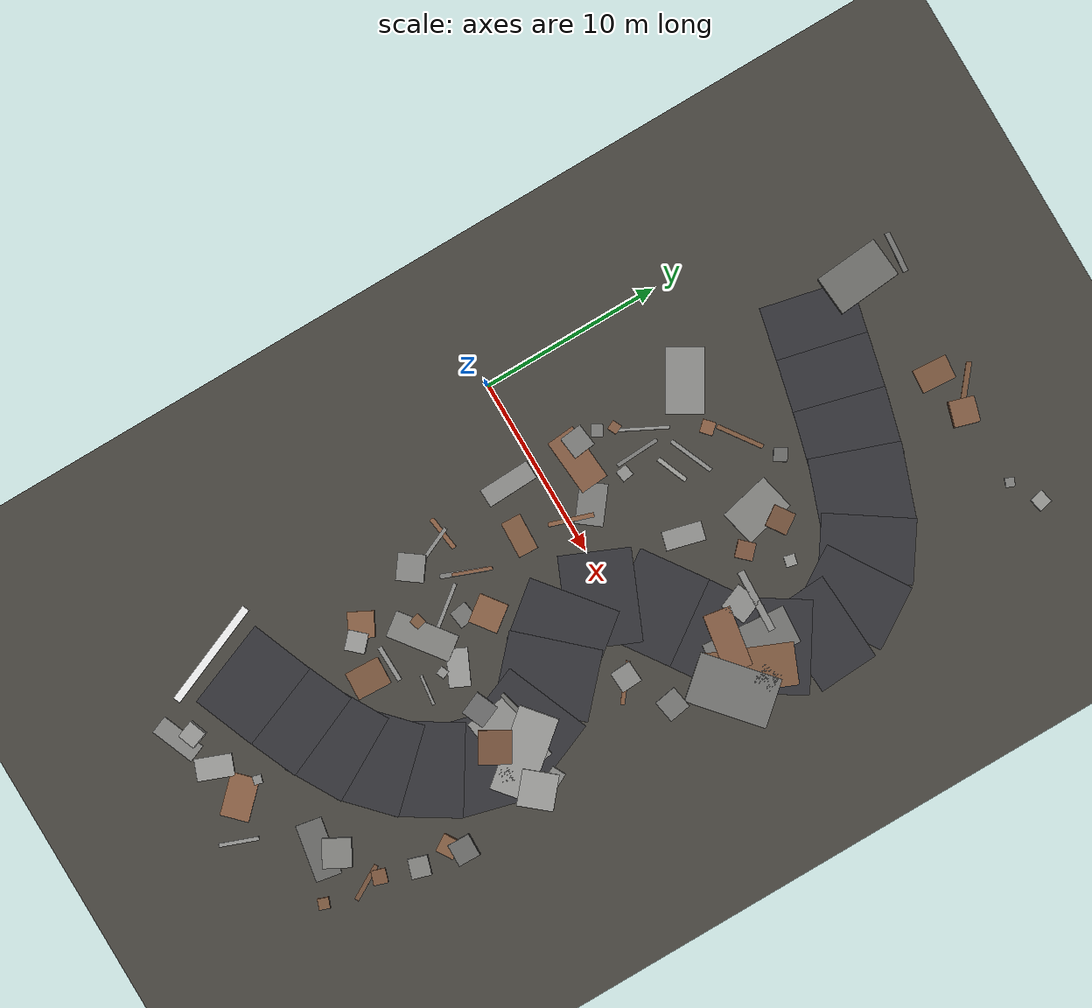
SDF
<sdf version="1.6">
 <world name="navitas_arena">
  <model name="ground_plane">
   <static>true</static>
   <link name="link">
    <collision name="collision">
     <geometry><plane><normal>0 0 1</normal><size>400 400</size></plane></geometry>
     <surface><friction><ode><mu>0.820</mu><mu2>0.820</mu2></ode></friction></surface>
    </collision>
    <visual name="visual">
     <cast_shadows>false</cast_shadows>
     <geometry><plane><normal>0 0 1</normal><size>400 400</size></plane></geometry>
     <material><ambient>0.280 0.270 0.250 1</ambient><diffuse>0.280 0.270 0.250 1</diffuse></material>
    </visual>
   </link>
  </model>
  <model name="road_orta_3_4">
   <static>true</static>
   <pose>7.215 -18.499 0.040 0 0 0.376</pose>
   <link name="link">
    <collision name="col"><geometry><box><size>3.640 5.000 0.020</size></box></geometry></collision>
    <visual name="vis">
     <geometry><box><size>3.640 5.000 0.020</size></box></geometry>
     <material><ambient>0.20 0.20 0.22 1</ambient><diffuse>0.20 0.20 0.22 1</diffuse></material>
    </visual>
   </link>
  </model>
  <model name="road_orta_3_5">
   <static>true</static>
   <pose>9.740 -17.455 0.040 0 0 0.408</pose>
   <link name="link">
    <collision name="col"><geometry><box><size>3.626 5.000 0.020</size></box></geometry></collision>
    <visual name="vis">
     <geometry><box><size>3.626 5.000 0.020</size></box></geometry>
     <material><ambient>0.20 0.20 0.22 1</ambient><diffuse>0.20 0.20 0.22 1</diffuse></material>
    </visual>
   </link>
  </model>
  <model name="road_orta_3_6">
   <static>true</static>
   <pose>12.071 -16.302 0.040 0 0 0.516</pose>
   <link name="link">
    <collision name="col"><geometry><box><size>3.384 5.000 0.020</size></box></geometry></collision>
    <visual name="vis">
     <geometry><box><size>3.384 5.000 0.020</size></box></geometry>
     <material><ambient>0.20 0.20 0.22 1</ambient><diffuse>0.20 0.20 0.22 1</diffuse></material>
    </visual>
   </link>
  </model>
  <model name="road_orta_3_7">
   <static>true</static>
   <pose>14.060 -14.833 0.040 0 0 0.755</pose>
   <link name="link">
    <collision name="col"><geometry><box><size>3.397 5.000 0.020</size></box></geometry></collision>
    <visual name="vis">
     <geometry><box><size>3.397 5.000 0.020</size></box></geometry>
     <material><ambient>0.20 0.20 0.22 1</ambient><diffuse>0.20 0.20 0.22 1</diffuse></material>
    </visual>
   </link>
  </model>
  <model name="road_orta_3_8">
   <static>true</static>
   <pose>15.695 -12.817 0.040 0 0 1.013</pose>
   <link name="link">
    <collision name="col"><geometry><box><size>3.637 5.000 0.020</size></box></geometry></collision>
    <visual name="vis">
     <geometry><box><size>3.637 5.000 0.020</size></box></geometry>
     <material><ambient>0.20 0.20 0.22 1</ambient><diffuse>0.20 0.20 0.22 1</diffuse></material>
    </visual>
   </link>
  </model>
  <model name="road_orta_3_9">
   <static>true</static>
   <pose>16.743 -10.426 0.040 0 0 1.313</pose>
   <link name="link">
    <collision name="col"><geometry><box><size>3.444 5.000 0.020</size></box></geometry></collision>
    <visual name="vis">
     <geometry><box><size>3.444 5.000 0.020</size></box></geometry>
     <material><ambient>0.20 0.20 0.22 1</ambient><diffuse>0.20 0.20 0.22 1</diffuse></material>
    </visual>
   </link>
  </model>
  <model name="road_orta_3_10">
   <static>true</static>
   <pose>16.413 -7.598 0.040 0 0 1.959</pose>
   <link name="link">
    <collision name="col"><geometry><box><size>4.353 5.000 0.020</size></box></geometry></collision>
    <visual name="vis">
     <geometry><box><size>4.353 5.000 0.020</size></box></geometry>
     <material><ambient>0.20 0.20 0.22 1</ambient><diffuse>0.20 0.20 0.22 1</diffuse></material>
    </visual>
   </link>
  </model>
  <model name="road_orta_3_11">
   <static>true</static>
   <pose>14.669 -5.000 0.040 0 0 2.399</pose>
   <link name="link">
    <collision name="col"><geometry><box><size>3.858 5.000 0.020</size></box></geometry></collision>
    <visual name="vis">
     <geometry><box><size>3.858 5.000 0.020</size></box></geometry>
     <material><ambient>0.20 0.20 0.22 1</ambient><diffuse>0.20 0.20 0.22 1</diffuse></material>
    </visual>
   </link>
  </model>
  <model name="road_orta_3_12">
   <static>true</static>
   <pose>12.776 -3.000 0.040 0 0 2.248</pose>
   <link name="link">
    <collision name="col"><geometry><box><size>3.465 5.000 0.020</size></box></geometry></collision>
    <visual name="vis">
     <geometry><box><size>3.465 5.000 0.020</size></box></geometry>
     <material><ambient>0.20 0.20 0.22 1</ambient><diffuse>0.20 0.20 0.22 1</diffuse></material>
    </visual>
   </link>
  </model>
  <model name="road_orta_3_13">
   <static>true</static>
   <pose>12.566 -0.625 0.040 0 0 1.163</pose>
   <link name="link">
    <collision name="col"><geometry><box><size>3.895 5.000 0.020</size></box></geometry></collision>
    <visual name="vis">
     <geometry><box><size>3.895 5.000 0.020</size></box></geometry>
     <material><ambient>0.20 0.20 0.22 1</ambient><diffuse>0.20 0.20 0.22 1</diffuse></material>
    </visual>
   </link>
  </model>
  <model name="road_orta_3_14">
   <static>true</static>
   <pose>14.409 1.625 0.040 0 0 0.611</pose>
   <link name="link">
    <collision name="col"><geometry><box><size>3.951 5.000 0.020</size></box></geometry></collision>
    <visual name="vis">
     <geometry><box><size>3.951 5.000 0.020</size></box></geometry>
     <material><ambient>0.20 0.20 0.22 1</ambient><diffuse>0.20 0.20 0.22 1</diffuse></material>
    </visual>
   </link>
  </model>
  <model name="road_orta_3_15">
   <static>true</static>
   <pose>16.948 3.375 0.040 0 0 0.596</pose>
   <link name="link">
    <collision name="col"><geometry><box><size>4.016 5.000 0.020</size></box></geometry></collision>
    <visual name="vis">
     <geometry><box><size>4.016 5.000 0.020</size></box></geometry>
     <material><ambient>0.20 0.20 0.22 1</ambient><diffuse>0.20 0.20 0.22 1</diffuse></material>
    </visual>
   </link>
  </model>
  <model name="road_orta_3_16">
   <static>true</static>
   <pose>19.176 5.723 0.040 0 0 1.003</pose>
   <link name="link">
    <collision name="col"><geometry><box><size>4.393 5.000 0.020</size></box></geometry></collision>
    <visual name="vis">
     <geometry><box><size>4.393 5.000 0.020</size></box></geometry>
     <material><ambient>0.20 0.20 0.22 1</ambient><diffuse>0.20 0.20 0.22 1</diffuse></material>
    </visual>
   </link>
  </model>
  <model name="road_orta_3_17">
   <static>true</static>
   <pose>20.046 8.426 0.040 0 0 1.627</pose>
   <link name="link">
    <collision name="col"><geometry><box><size>3.365 5.000 0.020</size></box></geometry></collision>
    <visual name="vis">
     <geometry><box><size>3.365 5.000 0.020</size></box></geometry>
     <material><ambient>0.20 0.20 0.22 1</ambient><diffuse>0.20 0.20 0.22 1</diffuse></material>
    </visual>
   </link>
  </model>
  <model name="road_orta_3_18">
   <static>true</static>
   <pose>19.238 10.817 0.040 0 0 2.138</pose>
   <link name="link">
    <collision name="col"><geometry><box><size>3.652 5.000 0.020</size></box></geometry></collision>
    <visual name="vis">
     <geometry><box><size>3.652 5.000 0.020</size></box></geometry>
     <material><ambient>0.20 0.20 0.22 1</ambient><diffuse>0.20 0.20 0.22 1</diffuse></material>
    </visual>
   </link>
  </model>
  <model name="road_orta_3_19">
   <static>true</static>
   <pose>17.422 12.704 0.040 0 0 2.548</pose>
   <link name="link">
    <collision name="col"><geometry><box><size>3.498 5.000 0.020</size></box></geometry></collision>
    <visual name="vis">
     <geometry><box><size>3.498 5.000 0.020</size></box></geometry>
     <material><ambient>0.20 0.20 0.22 1</ambient><diffuse>0.20 0.20 0.22 1</diffuse></material>
    </visual>
   </link>
  </model>
  <model name="road_orta_3_20">
   <static>true</static>
   <pose>14.699 14.016 0.040 0 0 2.800</pose>
   <link name="link">
    <collision name="col"><geometry><box><size>4.394 5.000 0.020</size></box></geometry></collision>
    <visual name="vis">
     <geometry><box><size>4.394 5.000 0.020</size></box></geometry>
     <material><ambient>0.20 0.20 0.22 1</ambient><diffuse>0.20 0.20 0.22 1</diffuse></material>
    </visual>
   </link>
  </model>
  <model name="road_orta_3_21">
   <static>true</static>
   <pose>11.716 14.952 0.040 0 0 2.886</pose>
   <link name="link">
    <collision name="col"><geometry><box><size>3.664 5.000 0.020</size></box></geometry></collision>
    <visual name="vis">
     <geometry><box><size>3.664 5.000 0.020</size></box></geometry>
     <material><ambient>0.20 0.20 0.22 1</ambient><diffuse>0.20 0.20 0.22 1</diffuse></material>
    </visual>
   </link>
  </model>
  <model name="road_orta_3_22">
   <static>true</static>
   <pose>8.961 15.629 0.040 0 0 2.915</pose>
   <link name="link">
    <collision name="col"><geometry><box><size>3.810 5.000 0.020</size></box></geometry></collision>
    <visual name="vis">
     <geometry><box><size>3.810 5.000 0.020</size></box></geometry>
     <material><ambient>0.20 0.20 0.22 1</ambient><diffuse>0.20 0.20 0.22 1</diffuse></material>
    </visual>
   </link>
  </model>
  <model name="road_orta_3_23">
   <static>true</static>
   <pose>6.139 16.268 0.040 0 0 2.922</pose>
   <link name="link">
    <collision name="col"><geometry><box><size>3.776 5.000 0.020</size></box></geometry></collision>
    <visual name="vis">
     <geometry><box><size>3.776 5.000 0.020</size></box></geometry>
     <material><ambient>0.20 0.20 0.22 1</ambient><diffuse>0.20 0.20 0.22 1</diffuse></material>
    </visual>
   </link>
  </model>
  <model name="bar_orta_3b">
   <static>true</static>
   <pose>4.742 -19.500 1.000 0 0 1.964</pose>
   <link name="link">
    <collision name="col"><geometry><box><size>6.000 0.400 0.300</size></box></geometry></collision>
    <visual name="vis">
     <geometry><box><size>6.000 0.400 0.300</size></box></geometry>
     <material><ambient>0.95 0.95 0.95 1</ambient><diffuse>0.95 0.95 0.95 1</diffuse></material>
    </visual>
   </link>
  </model>
  <model name="blk_orta_3_0_0">
   <static>true</static>
   <pose>19.340 -7.349 0.500 0 0 2.051</pose>
   <link name="link">
    <collision name="col"><geometry><box><size>0.785 0.785 1.000</size></box></geometry></collision>
    <visual name="vis">
     <geometry><box><size>0.785 0.785 1.000</size></box></geometry>
     <material><ambient>0.53 0.53 0.52 1</ambient><diffuse>0.53 0.53 0.52 1</diffuse></material>
    </visual>
   </link>
  </model>
  <model name="blk_orta_3_0_1">
   <static>true</static>
   <pose>19.468 -8.472 0.726 0 0 0.873</pose>
   <link name="link">
    <collision name="col"><geometry><box><size>1.946 1.946 1.453</size></box></geometry></collision>
    <visual name="vis">
     <geometry><box><size>1.946 1.946 1.453</size></box></geometry>
     <material><ambient>0.61 0.61 0.60 1</ambient><diffuse>0.61 0.61 0.60 1</diffuse></material>
    </visual>
   </link>
  </model>
  <model name="blk_orta_3_0_2">
   <static>true</static>
   <pose>17.496 -8.129 0.500 0 0 2.262</pose>
   <link name="link">
    <collision name="col"><geometry><box><size>4.613 2.178 1.000</size></box></geometry></collision>
    <visual name="vis">
     <geometry><box><size>4.613 2.178 1.000</size></box></geometry>
     <material><ambient>0.60 0.60 0.59 1</ambient><diffuse>0.60 0.60 0.59 1</diffuse></material>
    </visual>
   </link>
  </model>
  <model name="blk_orta_3_0_3">
   <static>true</static>
   <pose>14.354 -8.950 0.523 0 0 0.402</pose>
   <link name="link">
    <collision name="col"><geometry><box><size>1.334 1.334 1.046</size></box></geometry></collision>
    <visual name="vis">
     <geometry><box><size>1.334 1.334 1.046</size></box></geometry>
     <material><ambient>0.42 0.42 0.42 1</ambient><diffuse>0.42 0.42 0.42 1</diffuse></material>
    </visual>
   </link>
  </model>
  <model name="blk_orta_3_0_4">
   <static>true</static>
   <pose>17.931 -9.467 0.500 0 0 1.197</pose>
   <link name="link">
    <collision name="col"><geometry><box><size>0.752 0.752 1.000</size></box></geometry></collision>
    <visual name="vis">
     <geometry><box><size>0.752 0.752 1.000</size></box></geometry>
     <material><ambient>0.47 0.47 0.46 1</ambient><diffuse>0.47 0.47 0.46 1</diffuse></material>
    </visual>
   </link>
  </model>
  <model name="blk_orta_3_0_5">
   <static>true</static>
   <pose>15.954 -7.142 0.500 0 0 0.232</pose>
   <link name="link">
    <collision name="col"><geometry><box><size>3.565 0.251 1.000</size></box></geometry></collision>
    <visual name="vis">
     <geometry><box><size>3.565 0.251 1.000</size></box></geometry>
     <material><ambient>0.43 0.43 0.42 1</ambient><diffuse>0.43 0.43 0.42 1</diffuse></material>
    </visual>
   </link>
  </model>
  <model name="blk_orta_3_0_6">
   <static>true</static>
   <pose>16.422 -9.257 0.688 0 0 1.046</pose>
   <link name="link">
    <collision name="col"><geometry><box><size>1.780 1.780 1.376</size></box></geometry></collision>
    <visual name="vis">
     <geometry><box><size>1.780 1.780 1.376</size></box></geometry>
     <material><ambient>0.46 0.32 0.23 1</ambient><diffuse>0.46 0.32 0.23 1</diffuse></material>
    </visual>
   </link>
  </model>
  <model name="blk_orta_3_0_7">
   <static>true</static>
   <pose>16.453 -8.391 0.500 0 0 0.126</pose>
   <link name="link">
    <collision name="col"><geometry><box><size>3.896 2.533 1.000</size></box></geometry></collision>
    <visual name="vis">
     <geometry><box><size>3.896 2.533 1.000</size></box></geometry>
     <material><ambient>0.56 0.56 0.55 1</ambient><diffuse>0.56 0.56 0.55 1</diffuse></material>
    </visual>
   </link>
  </model>
  <model name="blk_orta_3_1_0">
   <static>true</static>
   <pose>20.190 2.924 0.500 0 0 0.713</pose>
   <link name="link">
    <collision name="col"><geometry><box><size>4.472 2.703 1.000</size></box></geometry></collision>
    <visual name="vis">
     <geometry><box><size>4.472 2.703 1.000</size></box></geometry>
     <material><ambient>0.45 0.45 0.44 1</ambient><diffuse>0.45 0.45 0.44 1</diffuse></material>
    </visual>
   </link>
  </model>
  <model name="blk_orta_3_1_1">
   <static>true</static>
   <pose>16.790 6.327 0.500 0 0 3.101</pose>
   <link name="link">
    <collision name="col"><geometry><box><size>3.450 0.368 1.000</size></box></geometry></collision>
    <visual name="vis">
     <geometry><box><size>3.450 0.368 1.000</size></box></geometry>
     <material><ambient>0.55 0.55 0.54 1</ambient><diffuse>0.55 0.55 0.54 1</diffuse></material>
    </visual>
   </link>
  </model>
  <model name="blk_orta_3_1_2">
   <static>true</static>
   <pose>17.806 4.000 0.500 0 0 2.981</pose>
   <link name="link">
    <collision name="col"><geometry><box><size>3.260 1.501 1.000</size></box></geometry></collision>
    <visual name="vis">
     <geometry><box><size>3.260 1.501 1.000</size></box></geometry>
     <material><ambient>0.52 0.36 0.26 1</ambient><diffuse>0.52 0.36 0.26 1</diffuse></material>
    </visual>
   </link>
  </model>
  <model name="blk_orta_3_1_4">
   <static>true</static>
   <pose>16.517 5.565 0.500 0 0 1.950</pose>
   <link name="link">
    <collision name="col"><geometry><box><size>1.452 1.452 1.000</size></box></geometry></collision>
    <visual name="vis">
     <geometry><box><size>1.452 1.452 1.000</size></box></geometry>
     <material><ambient>0.56 0.56 0.55 1</ambient><diffuse>0.56 0.56 0.55 1</diffuse></material>
    </visual>
   </link>
  </model>
  <model name="blk_orta_3_1_5">
   <static>true</static>
   <pose>20.539 4.770 0.500 0 0 2.059</pose>
   <link name="link">
    <collision name="col"><geometry><box><size>1.079 1.079 1.000</size></box></geometry></collision>
    <visual name="vis">
     <geometry><box><size>1.079 1.079 1.000</size></box></geometry>
     <material><ambient>0.43 0.43 0.43 1</ambient><diffuse>0.43 0.43 0.43 1</diffuse></material>
    </visual>
   </link>
  </model>
  <model name="blk_orta_3_1_6">
   <static>true</static>
   <pose>19.721 4.301 0.500 0 0 1.171</pose>
   <link name="link">
    <collision name="col"><geometry><box><size>4.713 2.270 1.000</size></box></geometry></collision>
    <visual name="vis">
     <geometry><box><size>4.713 2.270 1.000</size></box></geometry>
     <material><ambient>0.50 0.35 0.25 1</ambient><diffuse>0.50 0.35 0.25 1</diffuse></material>
    </visual>
   </link>
  </model>
  <model name="blk_orta_3_1_7">
   <static>true</static>
   <pose>18.563 4.970 0.500 0 0 1.492</pose>
   <link name="link">
    <collision name="col"><geometry><box><size>4.703 2.086 1.000</size></box></geometry></collision>
    <visual name="vis">
     <geometry><box><size>4.703 2.086 1.000</size></box></geometry>
     <material><ambient>0.45 0.45 0.44 1</ambient><diffuse>0.45 0.45 0.44 1</diffuse></material>
    </visual>
   </link>
  </model>
  <model name="blk_orta_3_2_2">
   <static>true</static>
   <pose>4.955 19.475 0.500 0 0 1.657</pose>
   <link name="link">
    <collision name="col"><geometry><box><size>3.569 2.222 1.000</size></box></geometry></collision>
    <visual name="vis">
     <geometry><box><size>3.569 2.222 1.000</size></box></geometry>
     <material><ambient>0.43 0.43 0.42 1</ambient><diffuse>0.43 0.43 0.42 1</diffuse></material>
    </visual>
   </link>
  </model>
  <model name="deb_orta_1">
   <static>true</static>
   <pose>11.576 -20.803 0.176 0 0 2.882</pose>
   <link name="link">
    <collision name="col"><geometry><box><size>0.472 0.472 0.352</size></box></geometry></collision>
    <visual name="vis">
     <geometry><box><size>0.472 0.472 0.352</size></box></geometry>
     <material><ambient>0.56 0.56 0.55 1</ambient><diffuse>0.56 0.56 0.55 1</diffuse></material>
    </visual>
   </link>
  </model>
  <model name="deb_orta_3">
   <static>true</static>
   <pose>4.867 21.886 0.189 0 0 3.061</pose>
   <link name="link">
    <collision name="col"><geometry><box><size>2.239 0.285 0.378</size></box></geometry></collision>
    <visual name="vis">
     <geometry><box><size>2.239 0.285 0.378</size></box></geometry>
     <material><ambient>0.45 0.45 0.44 1</ambient><diffuse>0.45 0.45 0.44 1</diffuse></material>
    </visual>
   </link>
  </model>
  <model name="deb_orta_4">
   <static>true</static>
   <pose>13.818 20.640 0.689 0 0 2.856</pose>
   <link name="link">
    <collision name="col"><geometry><box><size>1.384 1.384 1.379</size></box></geometry></collision>
    <visual name="vis">
     <geometry><box><size>1.384 1.384 1.379</size></box></geometry>
     <material><ambient>0.51 0.36 0.26 1</ambient><diffuse>0.51 0.36 0.26 1</diffuse></material>
    </visual>
   </link>
  </model>
  <model name="deb_orta_6">
   <static>true</static>
   <pose>8.550 7.274 0.084 0 0 0.402</pose>
   <link name="link">
    <collision name="col"><geometry><box><size>2.570 0.221 0.167</size></box></geometry></collision>
    <visual name="vis">
     <geometry><box><size>2.570 0.221 0.167</size></box></geometry>
     <material><ambient>0.56 0.56 0.55 1</ambient><diffuse>0.56 0.56 0.55 1</diffuse></material>
    </visual>
   </link>
  </model>
  <model name="deb_orta_7">
   <static>true</static>
   <pose>9.891 -11.800 0.088 0 0 0.019</pose>
   <link name="link">
    <collision name="col"><geometry><box><size>2.017 0.246 0.176</size></box></geometry></collision>
    <visual name="vis">
     <geometry><box><size>2.017 0.246 0.176</size></box></geometry>
     <material><ambient>0.57 0.57 0.56 1</ambient><diffuse>0.57 0.57 0.56 1</diffuse></material>
    </visual>
   </link>
  </model>
  <model name="deb_orta_11">
   <static>true</static>
   <pose>15.892 8.939 0.170 0 0 1.336</pose>
   <link name="link">
    <collision name="col"><geometry><box><size>0.598 0.598 0.340</size></box></geometry></collision>
    <visual name="vis">
     <geometry><box><size>0.598 0.598 0.340</size></box></geometry>
     <material><ambient>0.59 0.59 0.58 1</ambient><diffuse>0.59 0.59 0.58 1</diffuse></material>
    </visual>
   </link>
  </model>
  <model name="deb_orta_20">
   <static>true</static>
   <pose>12.748 8.779 0.114 0 0 1.794</pose>
   <link name="link">
    <collision name="col"><geometry><box><size>2.857 2.041 0.229</size></box></geometry></collision>
    <visual name="vis">
     <geometry><box><size>2.857 2.041 0.229</size></box></geometry>
     <material><ambient>0.51 0.51 0.50 1</ambient><diffuse>0.51 0.51 0.50 1</diffuse></material>
    </visual>
   </link>
  </model>
  <model name="deb_orta_23">
   <static>true</static>
   <pose>8.854 -7.788 0.116 0 0 2.235</pose>
   <link name="link">
    <collision name="col"><geometry><box><size>2.721 0.194 0.232</size></box></geometry></collision>
    <visual name="vis">
     <geometry><box><size>2.721 0.194 0.232</size></box></geometry>
     <material><ambient>0.56 0.56 0.55 1</ambient><diffuse>0.56 0.56 0.55 1</diffuse></material>
    </visual>
   </link>
  </model>
  <model name="deb_orta_26">
   <static>true</static>
   <pose>12.645 21.479 0.138 0 0 2.456</pose>
   <link name="link">
    <collision name="col"><geometry><box><size>2.420 0.284 0.277</size></box></geometry></collision>
    <visual name="vis">
     <geometry><box><size>2.420 0.284 0.277</size></box></geometry>
     <material><ambient>0.47 0.33 0.23 1</ambient><diffuse>0.47 0.33 0.23 1</diffuse></material>
    </visual>
   </link>
  </model>
  <model name="deb_orta_27">
   <static>true</static>
   <pose>8.024 -12.673 0.596 0 0 0.824</pose>
   <link name="link">
    <collision name="col"><geometry><box><size>1.078 1.078 1.193</size></box></geometry></collision>
    <visual name="vis">
     <geometry><box><size>1.078 1.078 1.193</size></box></geometry>
     <material><ambient>0.61 0.61 0.60 1</ambient><diffuse>0.61 0.61 0.60 1</diffuse></material>
    </visual>
   </link>
  </model>
  <model name="deb_orta_28">
   <static>true</static>
   <pose>6.138 -8.271 0.639 0 0 2.513</pose>
   <link name="link">
    <collision name="col"><geometry><box><size>1.467 1.467 1.277</size></box></geometry></collision>
    <visual name="vis">
     <geometry><box><size>1.467 1.467 1.277</size></box></geometry>
     <material><ambient>0.53 0.53 0.52 1</ambient><diffuse>0.53 0.53 0.52 1</diffuse></material>
    </visual>
   </link>
  </model>
  <model name="deb_orta_31">
   <static>true</static>
   <pose>8.059 1.513 0.122 0 0 2.485</pose>
   <link name="link">
    <collision name="col"><geometry><box><size>2.243 1.500 0.243</size></box></geometry></collision>
    <visual name="vis">
     <geometry><box><size>2.243 1.500 0.243</size></box></geometry>
     <material><ambient>0.49 0.49 0.48 1</ambient><diffuse>0.49 0.49 0.48 1</diffuse></material>
    </visual>
   </link>
  </model>
  <model name="deb_orta_32">
   <static>true</static>
   <pose>11.877 -8.816 0.151 0 0 2.703</pose>
   <link name="link">
    <collision name="col"><geometry><box><size>2.035 1.159 0.302</size></box></geometry></collision>
    <visual name="vis">
     <geometry><box><size>2.035 1.159 0.302</size></box></geometry>
     <material><ambient>0.61 0.61 0.60 1</ambient><diffuse>0.61 0.61 0.60 1</diffuse></material>
    </visual>
   </link>
  </model>
  <model name="deb_orta_35">
   <static>true</static>
   <pose>8.988 9.983 0.087 0 0 0.618</pose>
   <link name="link">
    <collision name="col"><geometry><box><size>2.637 0.230 0.174</size></box></geometry></collision>
    <visual name="vis">
     <geometry><box><size>2.637 0.230 0.174</size></box></geometry>
     <material><ambient>0.50 0.35 0.25 1</ambient><diffuse>0.50 0.35 0.25 1</diffuse></material>
    </visual>
   </link>
  </model>
  <model name="deb_orta_36">
   <static>true</static>
   <pose>18.208 20.868 0.200 0 0 2.785</pose>
   <link name="link">
    <collision name="col"><geometry><box><size>0.498 0.498 0.400</size></box></geometry></collision>
    <visual name="vis">
     <geometry><box><size>0.498 0.498 0.400</size></box></geometry>
     <material><ambient>0.50 0.50 0.49 1</ambient><diffuse>0.50 0.50 0.49 1</diffuse></material>
    </visual>
   </link>
  </model>
  <model name="deb_orta_40">
   <static>true</static>
   <pose>9.884 -22.411 0.189 0 0 1.202</pose>
   <link name="link">
    <collision name="col"><geometry><box><size>1.998 1.193 0.377</size></box></geometry></collision>
    <visual name="vis">
     <geometry><box><size>1.998 1.193 0.377</size></box></geometry>
     <material><ambient>0.61 0.61 0.60 1</ambient><diffuse>0.61 0.61 0.60 1</diffuse></material>
    </visual>
   </link>
  </model>
  <model name="deb_orta_50">
   <static>true</static>
   <pose>7.721 8.766 0.172 0 0 0.736</pose>
   <link name="link">
    <collision name="col"><geometry><box><size>0.715 0.715 0.344</size></box></geometry></collision>
    <visual name="vis">
     <geometry><box><size>0.715 0.715 0.344</size></box></geometry>
     <material><ambient>0.55 0.38 0.27 1</ambient><diffuse>0.55 0.38 0.27 1</diffuse></material>
    </visual>
   </link>
  </model>
  <model name="deb_orta_52">
   <static>true</static>
   <pose>16.339 -19.920 0.149 0 0 2.965</pose>
   <link name="link">
    <collision name="col"><geometry><box><size>3.126 1.423 0.298</size></box></geometry></collision>
    <visual name="vis">
     <geometry><box><size>3.126 1.423 0.298</size></box></geometry>
     <material><ambient>0.41 0.41 0.40 1</ambient><diffuse>0.41 0.41 0.40 1</diffuse></material>
    </visual>
   </link>
  </model>
  <model name="deb_orta_53">
   <static>true</static>
   <pose>19.861 21.772 0.271 0 0 0.218</pose>
   <link name="link">
    <collision name="col"><geometry><box><size>0.777 0.777 0.541</size></box></geometry></collision>
    <visual name="vis">
     <geometry><box><size>0.777 0.777 0.541</size></box></geometry>
     <material><ambient>0.59 0.59 0.58 1</ambient><diffuse>0.59 0.59 0.58 1</diffuse></material>
    </visual>
   </link>
  </model>
  <model name="deb_orta_54">
   <static>true</static>
   <pose>16.748 -1.530 0.627 0 0 1.629</pose>
   <link name="link">
    <collision name="col"><geometry><box><size>1.173 1.173 1.255</size></box></geometry></collision>
    <visual name="vis">
     <geometry><box><size>1.173 1.173 1.255</size></box></geometry>
     <material><ambient>0.54 0.54 0.53 1</ambient><diffuse>0.54 0.54 0.53 1</diffuse></material>
    </visual>
   </link>
  </model>
  <model name="deb_orta_60">
   <static>true</static>
   <pose>9.513 -9.587 0.199 0 0 0.651</pose>
   <link name="link">
    <collision name="col"><geometry><box><size>3.525 1.457 0.398</size></box></geometry></collision>
    <visual name="vis">
     <geometry><box><size>3.525 1.457 0.398</size></box></geometry>
     <material><ambient>0.51 0.51 0.50 1</ambient><diffuse>0.51 0.51 0.50 1</diffuse></material>
    </visual>
   </link>
  </model>
  <model name="deb_orta_61">
   <static>true</static>
   <pose>7.592 -2.565 0.190 0 0 3.102</pose>
   <link name="link">
    <collision name="col"><geometry><box><size>2.001 1.110 0.380</size></box></geometry></collision>
    <visual name="vis">
     <geometry><box><size>2.001 1.110 0.380</size></box></geometry>
     <material><ambient>0.50 0.35 0.25 1</ambient><diffuse>0.50 0.35 0.25 1</diffuse></material>
    </visual>
   </link>
  </model>
  <model name="deb_orta_64">
   <static>true</static>
   <pose>11.886 -22.064 0.135 0 0 2.352</pose>
   <link name="link">
    <collision name="col"><geometry><box><size>2.336 1.550 0.270</size></box></geometry></collision>
    <visual name="vis">
     <geometry><box><size>2.336 1.550 0.270</size></box></geometry>
     <material><ambient>0.55 0.38 0.27 1</ambient><diffuse>0.55 0.38 0.27 1</diffuse></material>
    </visual>
   </link>
  </model>
  <model name="deb_orta_66">
   <static>true</static>
   <pose>5.715 2.056 0.130 0 0 0.082</pose>
   <link name="link">
    <collision name="col"><geometry><box><size>3.145 1.574 0.261</size></box></geometry></collision>
    <visual name="vis">
     <geometry><box><size>3.145 1.574 0.261</size></box></geometry>
     <material><ambient>0.52 0.36 0.26 1</ambient><diffuse>0.52 0.36 0.26 1</diffuse></material>
    </visual>
   </link>
  </model>
  <model name="deb_orta_70">
   <static>true</static>
   <pose>9.654 -7.193 0.402 0 0 1.721</pose>
   <link name="link">
    <collision name="col"><geometry><box><size>0.981 0.981 0.803</size></box></geometry></collision>
    <visual name="vis">
     <geometry><box><size>0.981 0.981 0.803</size></box></geometry>
     <material><ambient>0.46 0.46 0.45 1</ambient><diffuse>0.46 0.46 0.45 1</diffuse></material>
    </visual>
   </link>
  </model>
  <model name="deb_orta_76">
   <static>true</static>
   <pose>7.833 -22.476 0.788 0 0 0.351</pose>
   <link name="link">
    <collision name="col"><geometry><box><size>0.994 0.994 1.576</size></box></geometry></collision>
    <visual name="vis">
     <geometry><box><size>0.994 0.994 1.576</size></box></geometry>
     <material><ambient>0.60 0.60 0.59 1</ambient><diffuse>0.60 0.60 0.59 1</diffuse></material>
    </visual>
   </link>
  </model>
  <model name="deb_orta_82">
   <static>true</static>
   <pose>7.741 -6.078 0.146 0 0 1.203</pose>
   <link name="link">
    <collision name="col"><geometry><box><size>2.465 0.254 0.292</size></box></geometry></collision>
    <visual name="vis">
     <geometry><box><size>2.465 0.254 0.292</size></box></geometry>
     <material><ambient>0.49 0.49 0.48 1</ambient><diffuse>0.49 0.49 0.48 1</diffuse></material>
    </visual>
   </link>
  </model>
  <model name="deb_orta_83">
   <static>true</static>
   <pose>6.044 5.810 0.150 0 0 1.097</pose>
   <link name="link">
    <collision name="col"><geometry><box><size>2.791 0.165 0.299</size></box></geometry></collision>
    <visual name="vis">
     <geometry><box><size>2.791 0.165 0.299</size></box></geometry>
     <material><ambient>0.57 0.57 0.56 1</ambient><diffuse>0.57 0.57 0.56 1</diffuse></material>
    </visual>
   </link>
  </model>
  <model name="deb_orta_85">
   <static>true</static>
   <pose>8.234 0.172 0.132 0 0 1.256</pose>
   <link name="link">
    <collision name="col"><geometry><box><size>2.441 0.241 0.264</size></box></geometry></collision>
    <visual name="vis">
     <geometry><box><size>2.441 0.241 0.264</size></box></geometry>
     <material><ambient>0.55 0.38 0.27 1</ambient><diffuse>0.55 0.38 0.27 1</diffuse></material>
    </visual>
   </link>
  </model>
  <model name="deb_orta_87">
   <static>true</static>
   <pose>4.968 -1.687 0.146 0 0 1.608</pose>
   <link name="link">
    <collision name="col"><geometry><box><size>2.862 1.029 0.292</size></box></geometry></collision>
    <visual name="vis">
     <geometry><box><size>2.862 1.029 0.292</size></box></geometry>
     <material><ambient>0.55 0.55 0.54 1</ambient><diffuse>0.55 0.55 0.54 1</diffuse></material>
    </visual>
   </link>
  </model>
  <model name="deb_orta_93">
   <static>true</static>
   <pose>4.914 3.709 0.172 0 0 2.599</pose>
   <link name="link">
    <collision name="col"><geometry><box><size>0.651 0.651 0.344</size></box></geometry></collision>
    <visual name="vis">
     <geometry><box><size>0.651 0.651 0.344</size></box></geometry>
     <material><ambient>0.48 0.48 0.47 1</ambient><diffuse>0.48 0.48 0.47 1</diffuse></material>
    </visual>
   </link>
  </model>
  <model name="deb_orta_101">
   <static>true</static>
   <pose>18.896 -21.103 0.323 0 0 1.224</pose>
   <link name="link">
    <collision name="col"><geometry><box><size>0.596 0.596 0.646</size></box></geometry></collision>
    <visual name="vis">
     <geometry><box><size>0.596 0.596 0.646</size></box></geometry>
     <material><ambient>0.49 0.35 0.25 1</ambient><diffuse>0.49 0.35 0.25 1</diffuse></material>
    </visual>
   </link>
  </model>
  <model name="deb_orta_102">
   <static>true</static>
   <pose>19.176 -17.903 0.240 0 0 2.832</pose>
   <link name="link">
    <collision name="col"><geometry><box><size>0.783 0.783 0.479</size></box></geometry></collision>
    <visual name="vis">
     <geometry><box><size>0.783 0.783 0.479</size></box></geometry>
     <material><ambient>0.49 0.34 0.24 1</ambient><diffuse>0.49 0.34 0.24 1</diffuse></material>
    </visual>
   </link>
  </model>
  <model name="deb_orta_105">
   <static>true</static>
   <pose>7.576 3.815 0.336 0 0 1.718</pose>
   <link name="link">
    <collision name="col"><geometry><box><size>0.643 0.643 0.673</size></box></geometry></collision>
    <visual name="vis">
     <geometry><box><size>0.643 0.643 0.673</size></box></geometry>
     <material><ambient>0.57 0.57 0.56 1</ambient><diffuse>0.57 0.57 0.56 1</diffuse></material>
    </visual>
   </link>
  </model>
  <model name="deb_orta_108">
   <static>true</static>
   <pose>13.872 -23.291 0.163 0 0 1.215</pose>
   <link name="link">
    <collision name="col"><geometry><box><size>2.123 0.200 0.325</size></box></geometry></collision>
    <visual name="vis">
     <geometry><box><size>2.123 0.200 0.325</size></box></geometry>
     <material><ambient>0.58 0.58 0.57 1</ambient><diffuse>0.58 0.58 0.57 1</diffuse></material>
    </visual>
   </link>
  </model>
  <model name="deb_orta_109">
   <static>true</static>
   <pose>11.950 4.801 0.110 0 0 1.316</pose>
   <link name="link">
    <collision name="col"><geometry><box><size>2.146 1.034 0.221</size></box></geometry></collision>
    <visual name="vis">
     <geometry><box><size>2.146 1.034 0.221</size></box></geometry>
     <material><ambient>0.57 0.57 0.56 1</ambient><diffuse>0.57 0.57 0.56 1</diffuse></material>
    </visual>
   </link>
  </model>
  <model name="deb_orta_110">
   <static>true</static>
   <pose>7.644 -23.306 0.124 0 0 0.381</pose>
   <link name="link">
    <collision name="col"><geometry><box><size>2.526 1.026 0.248</size></box></geometry></collision>
    <visual name="vis">
     <geometry><box><size>2.526 1.026 0.248</size></box></geometry>
     <material><ambient>0.52 0.52 0.51 1</ambient><diffuse>0.52 0.52 0.51 1</diffuse></material>
    </visual>
   </link>
  </model>
  <model name="deb_orta_114">
   <static>true</static>
   <pose>10.869 11.300 0.250 0 0 2.567</pose>
   <link name="link">
    <collision name="col"><geometry><box><size>0.736 0.736 0.500</size></box></geometry></collision>
    <visual name="vis">
     <geometry><box><size>0.736 0.736 0.500</size></box></geometry>
     <material><ambient>0.42 0.42 0.41 1</ambient><diffuse>0.42 0.42 0.41 1</diffuse></material>
    </visual>
   </link>
  </model>
  <model name="deb_orta_125">
   <static>true</static>
   <pose>5.799 -6.828 0.113 0 0 1.989</pose>
   <link name="link">
    <collision name="col"><geometry><box><size>2.511 0.195 0.227</size></box></geometry></collision>
    <visual name="vis">
     <geometry><box><size>2.511 0.195 0.227</size></box></geometry>
     <material><ambient>0.55 0.55 0.54 1</ambient><diffuse>0.55 0.55 0.54 1</diffuse></material>
    </visual>
   </link>
  </model>
  <model name="deb_orta_128">
   <static>true</static>
   <pose>19.795 -15.827 0.473 0 0 2.837</pose>
   <link name="link">
    <collision name="col"><geometry><box><size>1.068 1.068 0.947</size></box></geometry></collision>
    <visual name="vis">
     <geometry><box><size>1.068 1.068 0.947</size></box></geometry>
     <material><ambient>0.51 0.51 0.50 1</ambient><diffuse>0.51 0.51 0.50 1</diffuse></material>
    </visual>
   </link>
  </model>
  <model name="deb_orta_132">
   <static>true</static>
   <pose>5.253 4.576 0.344 0 0 2.019</pose>
   <link name="link">
    <collision name="col"><geometry><box><size>0.534 0.534 0.687</size></box></geometry></collision>
    <visual name="vis">
     <geometry><box><size>0.534 0.534 0.687</size></box></geometry>
     <material><ambient>0.51 0.36 0.26 1</ambient><diffuse>0.51 0.36 0.26 1</diffuse></material>
    </visual>
   </link>
  </model>
  <model name="deb_orta_133">
   <static>true</static>
   <pose>11.683 -9.647 0.224 0 0 0.395</pose>
   <link name="link">
    <collision name="col"><geometry><box><size>0.476 0.476 0.447</size></box></geometry></collision>
    <visual name="vis">
     <geometry><box><size>0.476 0.476 0.447</size></box></geometry>
     <material><ambient>0.58 0.58 0.57 1</ambient><diffuse>0.58 0.58 0.57 1</diffuse></material>
    </visual>
   </link>
  </model>
  <model name="deb_orta_138">
   <static>true</static>
   <pose>11.345 20.345 0.199 0 0 1.494</pose>
   <link name="link">
    <collision name="col"><geometry><box><size>1.901 1.303 0.398</size></box></geometry></collision>
    <visual name="vis">
     <geometry><box><size>1.901 1.303 0.398</size></box></geometry>
     <material><ambient>0.48 0.34 0.24 1</ambient><diffuse>0.48 0.34 0.24 1</diffuse></material>
    </visual>
   </link>
  </model>
  <model name="deb_orta_139">
   <static>true</static>
   <pose>4.917 2.532 0.460 0 0 1.689</pose>
   <link name="link">
    <collision name="col"><geometry><box><size>1.259 1.259 0.920</size></box></geometry></collision>
    <visual name="vis">
     <geometry><box><size>1.259 1.259 0.920</size></box></geometry>
     <material><ambient>0.49 0.49 0.48 1</ambient><diffuse>0.49 0.49 0.48 1</diffuse></material>
    </visual>
   </link>
  </model>
  <model name="deb_orta_140">
   <static>true</static>
   <pose>8.732 -9.406 0.213 0 0 1.850</pose>
   <link name="link">
    <collision name="col"><geometry><box><size>0.596 0.596 0.426</size></box></geometry></collision>
    <visual name="vis">
     <geometry><box><size>0.596 0.596 0.426</size></box></geometry>
     <material><ambient>0.49 0.35 0.25 1</ambient><diffuse>0.49 0.35 0.25 1</diffuse></material>
    </visual>
   </link>
  </model>
  <model name="deb_orta_142">
   <static>true</static>
   <pose>9.973 -13.148 0.111 0 0 1.526</pose>
   <link name="link">
    <collision name="col"><geometry><box><size>1.921 1.544 0.222</size></box></geometry></collision>
    <visual name="vis">
     <geometry><box><size>1.921 1.544 0.222</size></box></geometry>
     <material><ambient>0.48 0.34 0.24 1</ambient><diffuse>0.48 0.34 0.24 1</diffuse></material>
    </visual>
   </link>
  </model>
  <model name="deb_orta_143">
   <static>true</static>
   <pose>5.004 8.990 0.123 0 0 2.603</pose>
   <link name="link">
    <collision name="col"><geometry><box><size>3.527 2.078 0.246</size></box></geometry></collision>
    <visual name="vis">
     <geometry><box><size>3.527 2.078 0.246</size></box></geometry>
     <material><ambient>0.55 0.55 0.54 1</ambient><diffuse>0.55 0.55 0.54 1</diffuse></material>
    </visual>
   </link>
  </model>
  <model name="deb_orta_145">
   <static>true</static>
   <pose>19.639 -13.976 0.531 0 0 0.568</pose>
   <link name="link">
    <collision name="col"><geometry><box><size>1.015 1.015 1.062</size></box></geometry></collision>
    <visual name="vis">
     <geometry><box><size>1.015 1.015 1.062</size></box></geometry>
     <material><ambient>0.52 0.37 0.26 1</ambient><diffuse>0.52 0.37 0.26 1</diffuse></material>
    </visual>
   </link>
  </model>
  <model name="deb_orta_148">
   <static>true</static>
   <pose>8.668 6.045 0.163 0 0 0.386</pose>
   <link name="link">
    <collision name="col"><geometry><box><size>1.809 0.235 0.326</size></box></geometry></collision>
    <visual name="vis">
     <geometry><box><size>1.809 0.235 0.326</size></box></geometry>
     <material><ambient>0.62 0.62 0.60 1</ambient><diffuse>0.62 0.62 0.60 1</diffuse></material>
    </visual>
   </link>
  </model>
  <model name="deb_orta_151">
   <static>true</static>
   <pose>19.215 -0.175 0.507 0 0 1.744</pose>
   <link name="link">
    <collision name="col"><geometry><box><size>1.259 1.259 1.014</size></box></geometry></collision>
    <visual name="vis">
     <geometry><box><size>1.259 1.259 1.014</size></box></geometry>
     <material><ambient>0.46 0.46 0.45 1</ambient><diffuse>0.46 0.46 0.45 1</diffuse></material>
    </visual>
   </link>
  </model>
  <model name="deb_orta_155">
   <static>true</static>
   <pose>19.095 -18.654 0.102 0 0 2.094</pose>
   <link name="link">
    <collision name="col"><geometry><box><size>2.083 0.248 0.203</size></box></geometry></collision>
    <visual name="vis">
     <geometry><box><size>2.083 0.248 0.203</size></box></geometry>
     <material><ambient>0.45 0.32 0.23 1</ambient><diffuse>0.45 0.32 0.23 1</diffuse></material>
    </visual>
   </link>
  </model>
  <model name="deb_orta_165">
   <static>true</static>
   <pose>14.226 7.170 0.657 0 0 0.809</pose>
   <link name="link">
    <collision name="col"><geometry><box><size>0.952 0.952 1.314</size></box></geometry></collision>
    <visual name="vis">
     <geometry><box><size>0.952 0.952 1.314</size></box></geometry>
     <material><ambient>0.49 0.34 0.25 1</ambient><diffuse>0.49 0.34 0.25 1</diffuse></material>
    </visual>
   </link>
  </model>
  <model name="deb_orta_170">
   <static>true</static>
   <pose>16.996 -1.713 0.107 0 0 2.469</pose>
   <link name="link">
    <collision name="col"><geometry><box><size>2.319 0.227 0.214</size></box></geometry></collision>
    <visual name="vis">
     <geometry><box><size>2.319 0.227 0.214</size></box></geometry>
     <material><ambient>0.51 0.35 0.25 1</ambient><diffuse>0.51 0.35 0.25 1</diffuse></material>
    </visual>
   </link>
  </model>
  <model name="deb_orta_171">
   <static>true</static>
   <pose>13.798 9.557 0.501 0 0 2.173</pose>
   <link name="link">
    <collision name="col"><geometry><box><size>1.206 1.206 1.001</size></box></geometry></collision>
    <visual name="vis">
     <geometry><box><size>1.206 1.206 1.001</size></box></geometry>
     <material><ambient>0.45 0.32 0.23 1</ambient><diffuse>0.45 0.32 0.23 1</diffuse></material>
    </visual>
   </link>
  </model>
  <model name="deb_orta_173">
   <static>true</static>
   <pose>6.982 4.924 0.163 0 0 1.619</pose>
   <link name="link">
    <collision name="col"><geometry><box><size>2.467 0.206 0.325</size></box></geometry></collision>
    <visual name="vis">
     <geometry><box><size>2.467 0.206 0.325</size></box></geometry>
     <material><ambient>0.48 0.48 0.47 1</ambient><diffuse>0.48 0.48 0.47 1</diffuse></material>
    </visual>
   </link>
  </model>
  <model name="deb_orta_175">
   <static>true</static>
   <pose>16.965 -19.154 0.542 0 0 1.078</pose>
   <link name="link">
    <collision name="col"><geometry><box><size>1.570 1.570 1.084</size></box></geometry></collision>
    <visual name="vis">
     <geometry><box><size>1.570 1.570 1.084</size></box></geometry>
     <material><ambient>0.51 0.51 0.50 1</ambient><diffuse>0.51 0.51 0.50 1</diffuse></material>
    </visual>
   </link>
  </model>
  <model name="deb_orta_176">
   <static>true</static>
   <pose>12.067 -10.803 0.116 0 0 3.020</pose>
   <link name="link">
    <collision name="col"><geometry><box><size>1.664 0.152 0.232</size></box></geometry></collision>
    <visual name="vis">
     <geometry><box><size>1.664 0.152 0.232</size></box></geometry>
     <material><ambient>0.54 0.54 0.53 1</ambient><diffuse>0.54 0.54 0.53 1</diffuse></material>
    </visual>
   </link>
  </model>
  <model name="deb_orta_184">
   <static>true</static>
   <pose>7.934 -5.634 0.178 0 0 1.209</pose>
   <link name="link">
    <collision name="col"><geometry><box><size>2.140 0.183 0.356</size></box></geometry></collision>
    <visual name="vis">
     <geometry><box><size>2.140 0.183 0.356</size></box></geometry>
     <material><ambient>0.53 0.37 0.27 1</ambient><diffuse>0.53 0.37 0.27 1</diffuse></material>
    </visual>
   </link>
  </model>
  <model name="deb_orta_190">
   <static>true</static>
   <pose>5.447 -5.945 0.079 0 0 0.130</pose>
   <link name="link">
    <collision name="col"><geometry><box><size>1.925 0.253 0.157</size></box></geometry></collision>
    <visual name="vis">
     <geometry><box><size>1.925 0.253 0.157</size></box></geometry>
     <material><ambient>0.55 0.38 0.27 1</ambient><diffuse>0.55 0.38 0.27 1</diffuse></material>
    </visual>
   </link>
  </model>
  <model name="deb_orta_191">
   <static>true</static>
   <pose>10.249 -6.006 0.585 0 0 2.217</pose>
   <link name="link">
    <collision name="col"><geometry><box><size>1.596 1.596 1.170</size></box></geometry></collision>
    <visual name="vis">
     <geometry><box><size>1.596 1.596 1.170</size></box></geometry>
     <material><ambient>0.54 0.38 0.27 1</ambient><diffuse>0.54 0.38 0.27 1</diffuse></material>
    </visual>
   </link>
  </model>
  <model name="deb_orta_192">
   <static>true</static>
   <pose>20.200 -13.370 0.725 0 0 1.547</pose>
   <link name="link">
    <collision name="col"><geometry><box><size>1.239 1.239 1.450</size></box></geometry></collision>
    <visual name="vis">
     <geometry><box><size>1.239 1.239 1.450</size></box></geometry>
     <material><ambient>0.42 0.42 0.41 1</ambient><diffuse>0.42 0.42 0.41 1</diffuse></material>
    </visual>
   </link>
  </model>
  <model name="chic_orta_1">
   <static>true</static>
   <pose>7.380 -12.012 0.570 0 0 2.665</pose>
   <link name="link">
    <collision name="col"><geometry><box><size>1.400 1.400 1.139</size></box></geometry></collision>
    <visual name="vis">
     <geometry><box><size>1.400 1.400 1.139</size></box></geometry>
     <material><ambient>0.54 0.38 0.27 1</ambient><diffuse>0.54 0.38 0.27 1</diffuse></material>
    </visual>
   </link>
  </model>
 </world>
</sdf>
